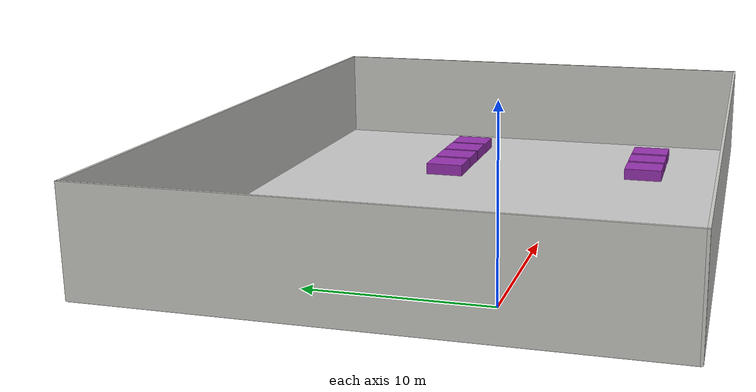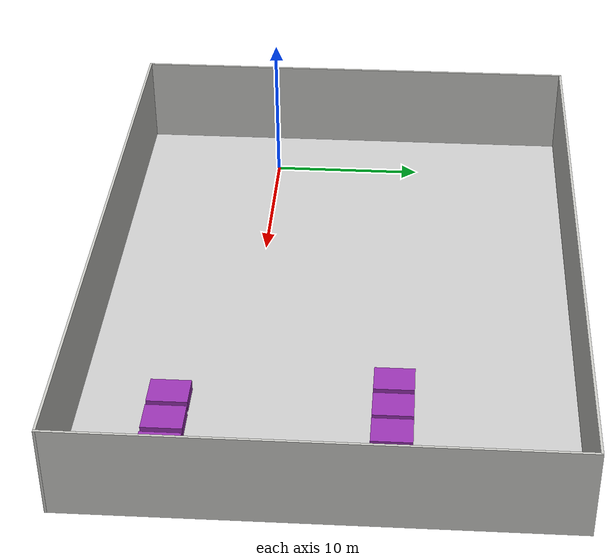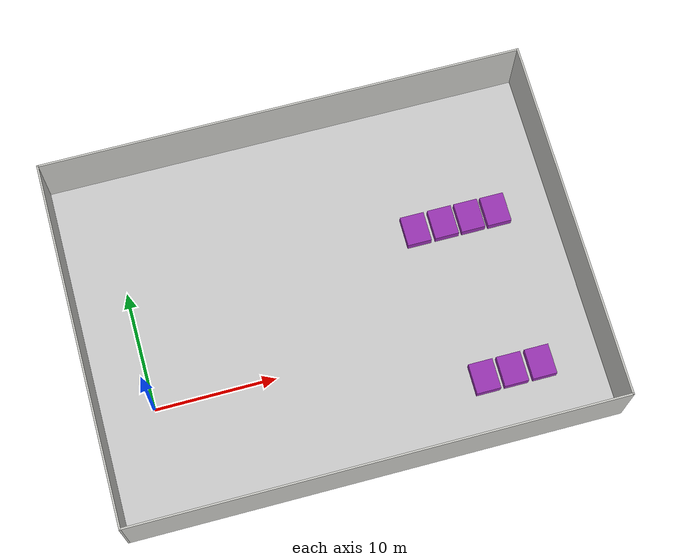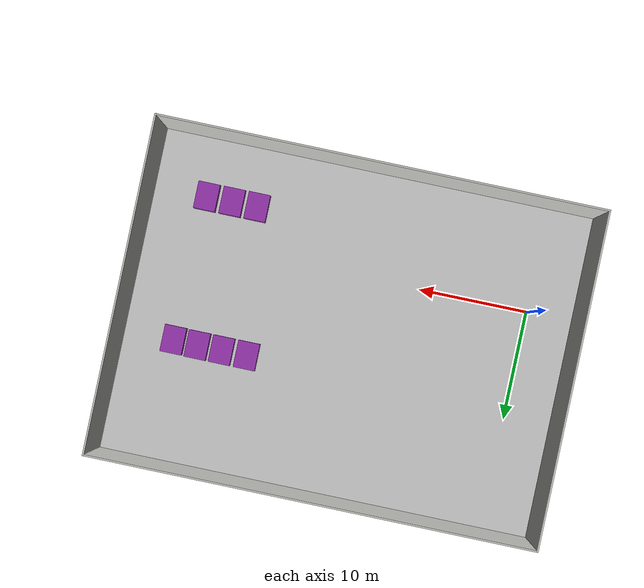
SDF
<sdf version="1.6">
 <world name="default">
  <include><uri>model://factory_sun</uri></include>
  <include><uri>model://factory_floor</uri><pose>15.7 5.25 0 0 0 0</pose></include>
  <include><uri>model://factory_outer_frame</uri><pose>15.7 5.25 0 0 0 0</pose></include>
  <include><uri>model://baggage_group_E</uri><pose>15.7 5.25 0 0 0 0</pose></include>
 </world>
</sdf>

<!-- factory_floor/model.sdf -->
<sdf version="1.4">
   <model name="factory_floor">
      <static>true</static>
      <link name="link">
         <collision name="collision">
            <geometry>
               <plane>
                  <normal>0 0 1</normal>
                  <size>40 30</size>
               </plane>
            </geometry>
            <surface>
               <friction>
                  <ode>
                     <mu>100</mu>
                     <mu2>50</mu2>
                  </ode>
               </friction>
            </surface>
         </collision>
         <visual name="visual">
            <cast_shadows>false</cast_shadows>
            <geometry>
               <plane>
                  <normal>0 0 1</normal>
                  <size>40 30</size>
               </plane>
            </geometry>
            <material>
               <script>
                  <uri>model://factory_floor/materials/scripts/factory_floor.material</uri>
                  <name>FactoryFloor/Image</name>
               </script>
            </material>
         </visual>
      </link>
   </model>
</sdf>

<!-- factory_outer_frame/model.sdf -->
<sdf version='1.6'>
  <model name='factory_outer_frame'>
    <pose frame=''>0 0 0 0 -0 0</pose>
    <link name='Wall_0'>
      <collision name='Wall_0_Collision'>
        <geometry>
          <box>
            <size>30.15 0.15 6</size>
          </box>
        </geometry>
        <pose frame=''>0 0 3 0 -0 0</pose>
      </collision>
      <visual name='Wall_0_Visual'>
        <cast_shadows>false</cast_shadows>
        <pose frame=''>0 0 3 0 -0 0</pose>
        <geometry>
          <box>
            <size>30.15 0.15 6</size>
          </box>
        </geometry>
        <material>
          <script>
            <uri>file://media/materials/scripts/gazebo.material</uri>
            <name>Gazebo/CeilingTiled</name>
          </script>
          <ambient>1 1 1 1</ambient>
        </material>
      </visual>
      <pose frame=''>20 0 0 0 0 -1.5708</pose>
    </link>
    <link name='Wall_1'>
      <collision name='Wall_1_Collision'>
        <geometry>
          <box>
            <size>40.15 0.15 6</size>
          </box>
        </geometry>
        <pose frame=''>0 0 3 0 -0 0</pose>
      </collision>
      <visual name='Wall_1_Visual'>
        <cast_shadows>false</cast_shadows>
        <pose frame=''>0 0 3 0 -0 0</pose>
        <geometry>
          <box>
            <size>40.15 0.15 6</size>
          </box>
        </geometry>
        <material>
          <script>
            <uri>file://media/materials/scripts/gazebo.material</uri>
            <name>Gazebo/CeilingTiled</name>
          </script>
          <ambient>1 1 1 1</ambient>
        </material>
      </visual>
      <pose frame=''>0 -15 0 0 -0 3.14159</pose>
    </link>
    <link name='Wall_2'>
      <collision name='Wall_2_Collision'>
        <geometry>
          <box>
            <size>30.15 0.15 6</size>
          </box>
        </geometry>
        <pose frame=''>0 0 3 0 -0 0</pose>
      </collision>
      <visual name='Wall_2_Visual'>
        <cast_shadows>false</cast_shadows>
        <pose frame=''>0 0 3 0 -0 0</pose>
        <geometry>
          <box>
            <size>30.15 0.15 6</size>
          </box>
        </geometry>
        <material>
          <script>
            <uri>file://media/materials/scripts/gazebo.material</uri>
            <name>Gazebo/CeilingTiled</name>
          </script>
          <ambient>1 1 1 1</ambient>
        </material>
      </visual>
      <pose frame=''>-20 0 0 0 -0 1.5708</pose>
    </link>
    <link name='Wall_3'>
      <collision name='Wall_3_Collision'>
        <geometry>
          <box>
            <size>40.15 0.15 6</size>
          </box>
        </geometry>
        <pose frame=''>0 0 3 0 -0 0</pose>
      </collision>
      <visual name='Wall_3_Visual'>
        <cast_shadows>false</cast_shadows>
        <pose frame=''>0 0 3 0 -0 0</pose>
        <geometry>
          <box>
            <size>40.15 0.15 6</size>
          </box>
        </geometry>
        <material>
          <script>
            <uri>file://media/materials/scripts/gazebo.material</uri>
            <name>Gazebo/CeilingTiled</name>
          </script>
          <ambient>1 1 1 1</ambient>
        </material>
      </visual>
      <pose frame=''>0 15 0 0 -0 0</pose>
    </link>
    <static>1</static>
  </model>
</sdf>

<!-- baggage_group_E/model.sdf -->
<sdf version="1.4">
  <model name="baggage_group_E">
      <model name='baggage_E'>
        <include>
          <uri>model://baggage_E</uri>
          <pose>8.47333 3.91062 0.375 0 -0 0</pose>
        </include>
      </model>
      <model name='baggage_E_0'>
        <include>
          <uri>model://baggage_E</uri>
          <pose>10.8032 3.91351 0.375 0 -0 0</pose>
        </include>
      </model>
      <model name='baggage_E_1'>
        <include>
          <uri>model://baggage_E</uri>
          <pose>13.0632 3.91267 0.375 0 -0 0</pose>
        </include>
      </model>
      <model name='baggage_E_2'>
        <include>
          <uri>model://baggage_E</uri>
          <pose>15.2965 3.88657 0.375 0 -0 0</pose>
        </include>
      </model>
      <model name='baggage_E_3'>
        <include>
          <uri>model://baggage_E</uri>
          <pose>10.3471 -9.53158 0.375 0 -0 0</pose>
        </include>
      </model>
      <model name='baggage_E_4'>
        <include>
          <uri>model://baggage_E</uri>
          <pose>12.6706 -9.51887 0.375 0 -0 0</pose>
        </include>
      </model>
      <model name='baggage_E_5'>
        <include>
          <uri>model://baggage_E</uri>
          <pose>15.0237 -9.51022 0.375 0 -0 0</pose>
        </include>
      </model>
  </model>
</sdf>

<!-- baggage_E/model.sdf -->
<sdf version='1.4'>
  <model name="baggage_E">
      <static>true</static>
      <link name="link">
         <collision name="collision">
            <geometry>
               <box>
                  <size>2 2.5 0.75</size>
               </box>
            </geometry>
         </collision>
         <visual name="visual">
            <cast_shadows>false</cast_shadows>
            <geometry>
               <box>
                  <size>2 2.5 0.75</size>
               </box>
            </geometry>
            <material>
               <script>
                  <uri>file://media/materials/scripts/gazebo.material</uri>
                  <name>Gazebo/Purple</name>
               </script>
            </material>
         </visual>
      </link>
  </model>
</sdf>
